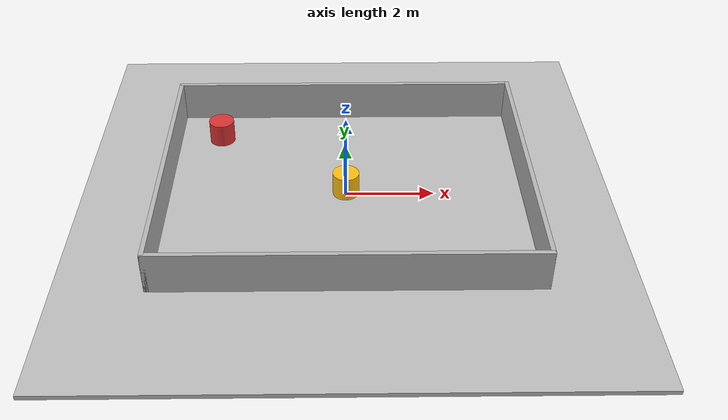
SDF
<?xml version="1.0" ?>
<!-- Static M1 scene for raw-only GPU-LiDAR diagnosis.  The dynamic obstacle
     models and their velocity systems are intentionally absent. -->
<sdf version="1.9">
  <world name="m1_static_raw">
    <physics name="1ms" type="ignored">
      <max_step_size>0.001</max_step_size>
      <real_time_factor>1.0</real_time_factor>
    </physics>
    <plugin filename="ignition-gazebo-physics-system"
            name="ignition::gazebo::systems::Physics"/>
    <plugin filename="ignition-gazebo-user-commands-system"
            name="ignition::gazebo::systems::UserCommands"/>
    <plugin filename="ignition-gazebo-scene-broadcaster-system"
            name="ignition::gazebo::systems::SceneBroadcaster"/>
    <plugin filename="ignition-gazebo-sensors-system"
            name="ignition::gazebo::systems::Sensors">
      <render_engine>ogre2</render_engine>
    </plugin>
    <light type="directional" name="sun">
      <pose>0 0 10 0 0 0</pose>
      <diffuse>0.8 0.8 0.8 1</diffuse>
      <direction>-0.5 0.1 -0.9</direction>
    </light>
    <model name="ground">
      <static>true</static>
      <link name="link">
        <collision name="collision">
          <geometry><box><size>12 12 0.1</size></box></geometry>
          <surface><friction><ode><mu>50.0</mu></ode></friction></surface>
        </collision>
        <visual name="visual">
          <geometry><box><size>12 12 0.1</size></box></geometry>
          <material><diffuse>0.75 0.75 0.75 1</diffuse></material>
        </visual>
      </link>
    </model>
    <model name="wall_north">
      <pose>0 3.25 0.5 0 0 0</pose><static>true</static>
      <link name="link"><collision name="collision"><geometry><box><size>8.2 0.1 1</size></box></geometry></collision>
        <visual name="visual"><geometry><box><size>8.2 0.1 1</size></box></geometry></visual></link>
    </model>
    <model name="wall_south">
      <pose>0 -3.25 0.5 0 0 0</pose><static>true</static>
      <link name="link"><collision name="collision"><geometry><box><size>8.2 0.1 1</size></box></geometry></collision>
        <visual name="visual"><geometry><box><size>8.2 0.1 1</size></box></geometry></visual></link>
    </model>
    <model name="wall_east">
      <pose>4.05 0 0.5 0 0 0</pose><static>true</static>
      <link name="link"><collision name="collision"><geometry><box><size>0.1 6.6 1</size></box></geometry></collision>
        <visual name="visual"><geometry><box><size>0.1 6.6 1</size></box></geometry></visual></link>
    </model>
    <model name="wall_west">
      <pose>-4.05 0 0.5 0 0 0</pose><static>true</static>
      <link name="link"><collision name="collision"><geometry><box><size>0.1 6.6 1</size></box></geometry></collision>
        <visual name="visual"><geometry><box><size>0.1 6.6 1</size></box></geometry></visual></link>
    </model>
    <model name="static_obstacle_1">
      <pose>-3.0 2.2 0.3 0 0 0</pose><static>true</static>
      <link name="link"><collision name="collision"><geometry><cylinder><radius>0.3</radius><length>0.6</length></cylinder></geometry></collision>
        <visual name="visual"><geometry><cylinder><radius>0.3</radius><length>0.6</length></cylinder></geometry>
          <material><diffuse>0.85 0.2 0.2 1</diffuse></material></visual></link>
    </model>
    <model name="static_obstacle_2">
      <pose>0.0 0.0 0.3 0 0 0</pose><static>true</static>
      <link name="link"><collision name="collision"><geometry><cylinder><radius>0.3</radius><length>0.6</length></cylinder></geometry></collision>
        <visual name="visual"><geometry><cylinder><radius>0.3</radius><length>0.6</length></cylinder></geometry>
          <material><diffuse>1 0.75 0.05 1</diffuse></material></visual></link>
    </model>
    <model name="goal_marker">
      <pose>2.5 1.5 0.02 0 0 0</pose><static>true</static>
      <link name="link"><visual name="visual"><visibility_flags>0x01</visibility_flags>
        <geometry><cylinder><radius>0.20</radius><length>0.03</length></cylinder></geometry>
        <material><diffuse>1 0.85 0.05 1</diffuse><emissive>0.5 0.4 0 1</emissive></material>
      </visual></link>
    </model>
  </world>
</sdf>
